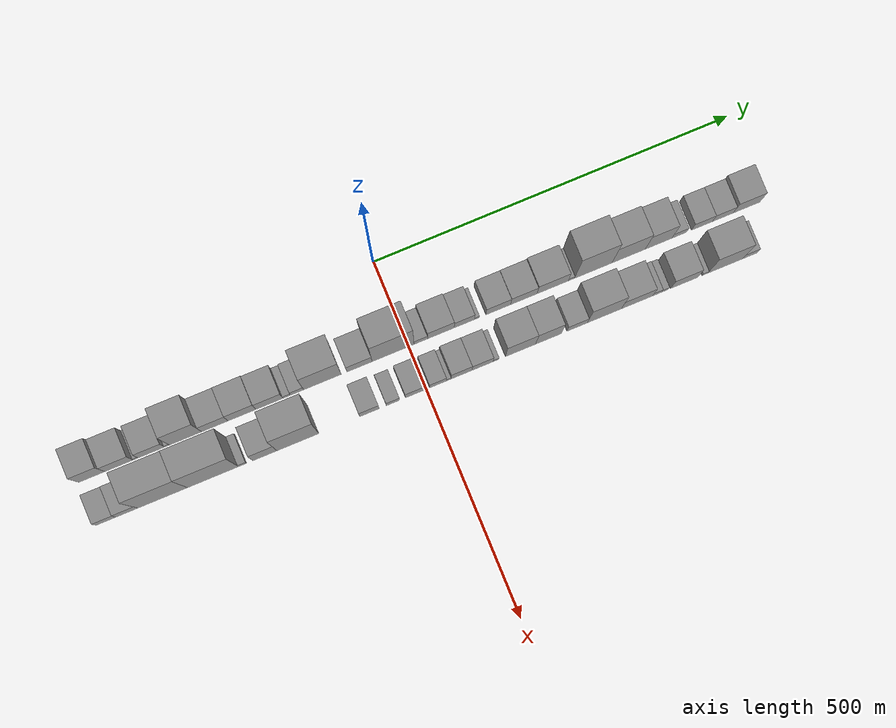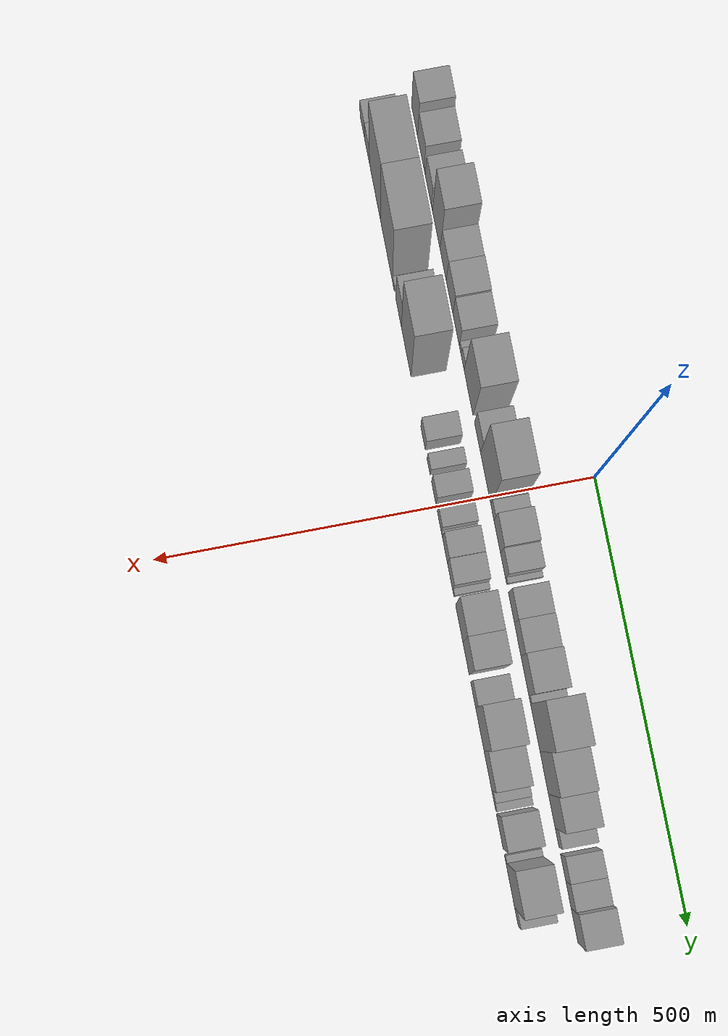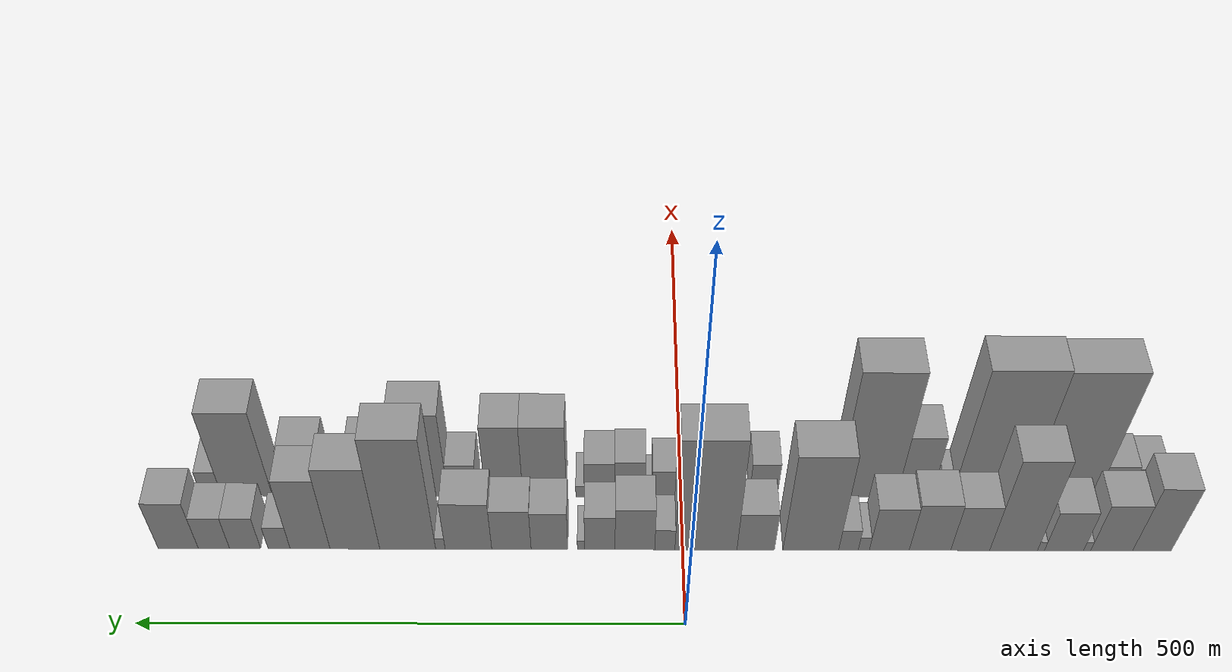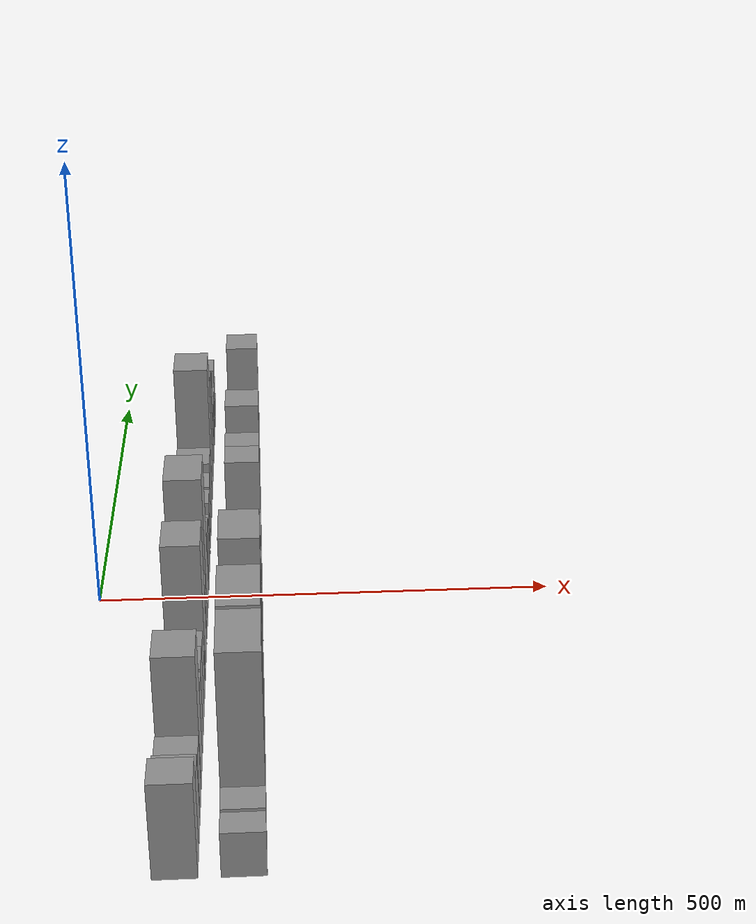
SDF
<sdf version="1.6">
 <world name="default">
  <scene>
   <sky><clouds><speed>12</speed></clouds></sky>
   <ambient>0.4 0.4 0.4 1</ambient>
   <background>0.7 0.7 0.7 1</background>
   <shadows>1</shadows>
  </scene>
  <gravity>0 0 -9.8066</gravity>
  <magnetic_field>6e-06 2.3e-05 -4.2e-05</magnetic_field>
  <physics default="0" name="default_physics" type="ode">
   <ode>
    <solver>
     <type>quick</type>
     <iters>10</iters>
     <sor>1.0</sor>
     <use_dynamic_moi_rescaling>0</use_dynamic_moi_rescaling>
    </solver>
    <constraints>
     <cfm>0</cfm>
     <erp>0.2</erp>
     <contact_max_correcting_vel>100</contact_max_correcting_vel>
     <contact_surface_layer>0.001</contact_surface_layer>
    </constraints>
   </ode>
   <max_step_size>0.004</max_step_size>
   <real_time_factor>1</real_time_factor>
   <real_time_update_rate>250</real_time_update_rate>
  </physics>
  <light name="sun" type="directional">
   <pose>0 0 10 0 0 0</pose>
   <diffuse>0.8 0.8 0.8 1</diffuse>
   <specular>0.2 0.2 0.2 1</specular>
   <attenuation>
    <range>1000</range>
    <constant>0.9</constant>
    <linear>0.01</linear>
    <quadratic>0.001</quadratic>
   </attenuation>
   <direction>-0.5 0.1 -0.9</direction>
  </light>
  <model name="building_1">
   <static>1</static>
   <pose>100.0000 -441.8126 0 0.000000 0.000000 0.000000</pose>
   <link name="link">
    <pose>0 0 51.00 0 0 0</pose>
    <collision name="collision"><geometry><box><size>40.0000 36.3749 102.0000</size></box></geometry></collision>
    <visual name="visual">
     <cast_shadows>0</cast_shadows>
     <geometry><box><size>40.0000 36.3749 102.0000</size></box></geometry>
     <material>
      <script>
       <uri>model://grey_wall/materials/scripts</uri>
       <uri>model://grey_wall/materials/textures</uri>
       <name>vrc/grey_wall</name>
      </script>
     </material>
    </visual>
   </link>
  </model>
  <model name="building_2">
   <static>1</static>
   <pose>100.0000 -403.9392 0 0.000000 0.000000 0.000000</pose>
   <link name="link">
    <pose>0 0 37.50 0 0 0</pose>
    <collision name="collision"><geometry><box><size>40.0000 39.3718 75.0000</size></box></geometry></collision>
    <visual name="visual">
     <cast_shadows>0</cast_shadows>
     <geometry><box><size>40.0000 39.3718 75.0000</size></box></geometry>
     <material>
      <script>
       <uri>model://grey_wall/materials/scripts</uri>
       <uri>model://grey_wall/materials/textures</uri>
       <name>vrc/grey_wall</name>
      </script>
     </material>
    </visual>
   </link>
  </model>
  <model name="building_3">
   <static>1</static>
   <pose>100.0000 -380.8767 0 0.000000 0.000000 0.000000</pose>
   <link name="link">
    <pose>0 0 7.50 0 0 0</pose>
    <collision name="collision"><geometry><box><size>40.0000 6.7534 15.0000</size></box></geometry></collision>
    <visual name="visual">
     <cast_shadows>0</cast_shadows>
     <geometry><box><size>40.0000 6.7534 15.0000</size></box></geometry>
     <material>
      <script>
       <uri>model://grey_wall/materials/scripts</uri>
       <uri>model://grey_wall/materials/textures</uri>
       <name>vrc/grey_wall</name>
      </script>
     </material>
    </visual>
   </link>
  </model>
  <model name="building_4">
   <static>1</static>
   <pose>100.0000 -359.0829 0 0.000000 0.000000 0.000000</pose>
   <link name="link">
    <pose>0 0 31.50 0 0 0</pose>
    <collision name="collision"><geometry><box><size>40.0000 36.8342 63.0000</size></box></geometry></collision>
    <visual name="visual">
     <cast_shadows>0</cast_shadows>
     <geometry><box><size>40.0000 36.8342 63.0000</size></box></geometry>
     <material>
      <script>
       <uri>model://grey_wall/materials/scripts</uri>
       <uri>model://grey_wall/materials/textures</uri>
       <name>vrc/grey_wall</name>
      </script>
     </material>
    </visual>
   </link>
  </model>
  <model name="building_5">
   <static>1</static>
   <pose>100.0000 -337.3426 0 0.000000 0.000000 0.000000</pose>
   <link name="link">
    <pose>0 0 7.50 0 0 0</pose>
    <collision name="collision"><geometry><box><size>40.0000 6.6463 15.0000</size></box></geometry></collision>
    <visual name="visual">
     <cast_shadows>0</cast_shadows>
     <geometry><box><size>40.0000 6.6463 15.0000</size></box></geometry>
     <material>
      <script>
       <uri>model://grey_wall/materials/scripts</uri>
       <uri>model://grey_wall/materials/textures</uri>
       <name>vrc/grey_wall</name>
      </script>
     </material>
    </visual>
   </link>
  </model>
  <model name="building_6">
   <static>1</static>
   <pose>100.0000 -311.4892 0 0.000000 0.000000 0.000000</pose>
   <link name="link">
    <pose>0 0 72.00 0 0 0</pose>
    <collision name="collision"><geometry><box><size>40.0000 45.0605 144.0000</size></box></geometry></collision>
    <visual name="visual">
     <cast_shadows>0</cast_shadows>
     <geometry><box><size>40.0000 45.0605 144.0000</size></box></geometry>
     <material>
      <script>
       <uri>model://grey_wall/materials/scripts</uri>
       <uri>model://grey_wall/materials/textures</uri>
       <name>vrc/grey_wall</name>
      </script>
     </material>
    </visual>
   </link>
  </model>
  <model name="building_7">
   <static>1</static>
   <pose>100.0000 -270.5610 0 0.000000 0.000000 0.000000</pose>
   <link name="link">
    <pose>0 0 36.00 0 0 0</pose>
    <collision name="collision"><geometry><box><size>40.0000 36.7960 72.0000</size></box></geometry></collision>
    <visual name="visual">
     <cast_shadows>0</cast_shadows>
     <geometry><box><size>40.0000 36.7960 72.0000</size></box></geometry>
     <material>
      <script>
       <uri>model://grey_wall/materials/scripts</uri>
       <uri>model://grey_wall/materials/textures</uri>
       <name>vrc/grey_wall</name>
      </script>
     </material>
    </visual>
   </link>
  </model>
  <model name="building_8">
   <static>1</static>
   <pose>100.0000 -232.6047 0 0.000000 0.000000 0.000000</pose>
   <link name="link">
    <pose>0 0 37.50 0 0 0</pose>
    <collision name="collision"><geometry><box><size>40.0000 39.1166 75.0000</size></box></geometry></collision>
    <visual name="visual">
     <cast_shadows>0</cast_shadows>
     <geometry><box><size>40.0000 39.1166 75.0000</size></box></geometry>
     <material>
      <script>
       <uri>model://grey_wall/materials/scripts</uri>
       <uri>model://grey_wall/materials/textures</uri>
       <name>vrc/grey_wall</name>
      </script>
     </material>
    </visual>
   </link>
  </model>
  <model name="building_9">
   <static>1</static>
   <pose>100.0000 -194.2827 0 0.000000 0.000000 0.000000</pose>
   <link name="link">
    <pose>0 0 34.50 0 0 0</pose>
    <collision name="collision"><geometry><box><size>40.0000 37.5274 69.0000</size></box></geometry></collision>
    <visual name="visual">
     <cast_shadows>0</cast_shadows>
     <geometry><box><size>40.0000 37.5274 69.0000</size></box></geometry>
     <material>
      <script>
       <uri>model://grey_wall/materials/scripts</uri>
       <uri>model://grey_wall/materials/textures</uri>
       <name>vrc/grey_wall</name>
      </script>
     </material>
    </visual>
   </link>
  </model>
  <model name="building_10">
   <static>1</static>
   <pose>100.0000 -170.3097 0 0.000000 0.000000 0.000000</pose>
   <link name="link">
    <pose>0 0 10.50 0 0 0</pose>
    <collision name="collision"><geometry><box><size>40.0000 10.4186 21.0000</size></box></geometry></collision>
    <visual name="visual">
     <cast_shadows>0</cast_shadows>
     <geometry><box><size>40.0000 10.4186 21.0000</size></box></geometry>
     <material>
      <script>
       <uri>model://grey_wall/materials/scripts</uri>
       <uri>model://grey_wall/materials/textures</uri>
       <name>vrc/grey_wall</name>
      </script>
     </material>
    </visual>
   </link>
  </model>
  <model name="building_11">
   <static>1</static>
   <pose>100.0000 -155.8500 0 0.000000 0.000000 0.000000</pose>
   <link name="link">
    <pose>0 0 16.50 0 0 0</pose>
    <collision name="collision"><geometry><box><size>40.0000 18.5008 33.0000</size></box></geometry></collision>
    <visual name="visual">
     <cast_shadows>0</cast_shadows>
     <geometry><box><size>40.0000 18.5008 33.0000</size></box></geometry>
     <material>
      <script>
       <uri>model://grey_wall/materials/scripts</uri>
       <uri>model://grey_wall/materials/textures</uri>
       <name>vrc/grey_wall</name>
      </script>
     </material>
    </visual>
   </link>
  </model>
  <model name="building_12">
   <static>1</static>
   <pose>100.0000 -120.3261 0 0.000000 0.000000 0.000000</pose>
   <link name="link">
    <pose>0 0 75.00 0 0 0</pose>
    <collision name="collision"><geometry><box><size>40.0000 52.5469 150.0000</size></box></geometry></collision>
    <visual name="visual">
     <cast_shadows>0</cast_shadows>
     <geometry><box><size>40.0000 52.5469 150.0000</size></box></geometry>
     <material>
      <script>
       <uri>model://grey_wall/materials/scripts</uri>
       <uri>model://grey_wall/materials/textures</uri>
       <name>vrc/grey_wall</name>
      </script>
     </material>
    </visual>
   </link>
  </model>
  <model name="building_13">
   <static>1</static>
   <pose>100.0000 -68.3643 0 0.000000 0.000000 0.000000</pose>
   <link name="link">
    <pose>0 0 30.00 0 0 0</pose>
    <collision name="collision"><geometry><box><size>40.0000 35.3768 60.0000</size></box></geometry></collision>
    <visual name="visual">
     <cast_shadows>0</cast_shadows>
     <geometry><box><size>40.0000 35.3768 60.0000</size></box></geometry>
     <material>
      <script>
       <uri>model://grey_wall/materials/scripts</uri>
       <uri>model://grey_wall/materials/textures</uri>
       <name>vrc/grey_wall</name>
      </script>
     </material>
    </visual>
   </link>
  </model>
  <model name="building_14">
   <static>1</static>
   <pose>100.0000 -21.4042 0 0.000000 0.000000 0.000000</pose>
   <link name="link">
    <pose>0 0 87.00 0 0 0</pose>
    <collision name="collision"><geometry><box><size>40.0000 58.5434 174.0000</size></box></geometry></collision>
    <visual name="visual">
     <cast_shadows>0</cast_shadows>
     <geometry><box><size>40.0000 58.5434 174.0000</size></box></geometry>
     <material>
      <script>
       <uri>model://grey_wall/materials/scripts</uri>
       <uri>model://grey_wall/materials/textures</uri>
       <name>vrc/grey_wall</name>
      </script>
     </material>
    </visual>
   </link>
  </model>
  <model name="building_15">
   <static>1</static>
   <pose>100.0000 17.3543 0 0.000000 0.000000 0.000000</pose>
   <link name="link">
    <pose>0 0 16.50 0 0 0</pose>
    <collision name="collision"><geometry><box><size>40.0000 18.9735 33.0000</size></box></geometry></collision>
    <visual name="visual">
     <cast_shadows>0</cast_shadows>
     <geometry><box><size>40.0000 18.9735 33.0000</size></box></geometry>
     <material>
      <script>
       <uri>model://grey_wall/materials/scripts</uri>
       <uri>model://grey_wall/materials/textures</uri>
       <name>vrc/grey_wall</name>
      </script>
     </material>
    </visual>
   </link>
  </model>
  <model name="building_16">
   <static>1</static>
   <pose>100.0000 45.5237 0 0.000000 0.000000 0.000000</pose>
   <link name="link">
    <pose>0 0 33.00 0 0 0</pose>
    <collision name="collision"><geometry><box><size>40.0000 37.3653 66.0000</size></box></geometry></collision>
    <visual name="visual">
     <cast_shadows>0</cast_shadows>
     <geometry><box><size>40.0000 37.3653 66.0000</size></box></geometry>
     <material>
      <script>
       <uri>model://grey_wall/materials/scripts</uri>
       <uri>model://grey_wall/materials/textures</uri>
       <name>vrc/grey_wall</name>
      </script>
     </material>
    </visual>
   </link>
  </model>
  <model name="building_17">
   <static>1</static>
   <pose>100.0000 78.5147 0 0.000000 0.000000 0.000000</pose>
   <link name="link">
    <pose>0 0 27.00 0 0 0</pose>
    <collision name="collision"><geometry><box><size>40.0000 28.6168 54.0000</size></box></geometry></collision>
    <visual name="visual">
     <cast_shadows>0</cast_shadows>
     <geometry><box><size>40.0000 28.6168 54.0000</size></box></geometry>
     <material>
      <script>
       <uri>model://grey_wall/materials/scripts</uri>
       <uri>model://grey_wall/materials/textures</uri>
       <name>vrc/grey_wall</name>
      </script>
     </material>
    </visual>
   </link>
  </model>
  <model name="building_18">
   <static>1</static>
   <pose>100.0000 96.2851 0 0.000000 0.000000 0.000000</pose>
   <link name="link">
    <pose>0 0 7.50 0 0 0</pose>
    <collision name="collision"><geometry><box><size>40.0000 6.9240 15.0000</size></box></geometry></collision>
    <visual name="visual">
     <cast_shadows>0</cast_shadows>
     <geometry><box><size>40.0000 6.9240 15.0000</size></box></geometry>
     <material>
      <script>
       <uri>model://grey_wall/materials/scripts</uri>
       <uri>model://grey_wall/materials/textures</uri>
       <name>vrc/grey_wall</name>
      </script>
     </material>
    </visual>
   </link>
  </model>
  <model name="building_19">
   <static>1</static>
   <pose>100.0000 126.0589 0 0.000000 0.000000 0.000000</pose>
   <link name="link">
    <pose>0 0 30.00 0 0 0</pose>
    <collision name="collision"><geometry><box><size>40.0000 34.6235 60.0000</size></box></geometry></collision>
    <visual name="visual">
     <cast_shadows>0</cast_shadows>
     <geometry><box><size>40.0000 34.6235 60.0000</size></box></geometry>
     <material>
      <script>
       <uri>model://grey_wall/materials/scripts</uri>
       <uri>model://grey_wall/materials/textures</uri>
       <name>vrc/grey_wall</name>
      </script>
     </material>
    </visual>
   </link>
  </model>
  <model name="building_20">
   <static>1</static>
   <pose>100.0000 161.9374 0 0.000000 0.000000 0.000000</pose>
   <link name="link">
    <pose>0 0 31.50 0 0 0</pose>
    <collision name="collision"><geometry><box><size>40.0000 37.1336 63.0000</size></box></geometry></collision>
    <visual name="visual">
     <cast_shadows>0</cast_shadows>
     <geometry><box><size>40.0000 37.1336 63.0000</size></box></geometry>
     <material>
      <script>
       <uri>model://grey_wall/materials/scripts</uri>
       <uri>model://grey_wall/materials/textures</uri>
       <name>vrc/grey_wall</name>
      </script>
     </material>
    </visual>
   </link>
  </model>
  <model name="building_21">
   <static>1</static>
   <pose>100.0000 202.5004 0 0.000000 0.000000 0.000000</pose>
   <link name="link">
    <pose>0 0 37.50 0 0 0</pose>
    <collision name="collision"><geometry><box><size>40.0000 43.9925 75.0000</size></box></geometry></collision>
    <visual name="visual">
     <cast_shadows>0</cast_shadows>
     <geometry><box><size>40.0000 43.9925 75.0000</size></box></geometry>
     <material>
      <script>
       <uri>model://grey_wall/materials/scripts</uri>
       <uri>model://grey_wall/materials/textures</uri>
       <name>vrc/grey_wall</name>
      </script>
     </material>
    </visual>
   </link>
  </model>
  <model name="building_22">
   <static>1</static>
   <pose>100.0000 228.9801 0 0.000000 0.000000 0.000000</pose>
   <link name="link">
    <pose>0 0 9.00 0 0 0</pose>
    <collision name="collision"><geometry><box><size>40.0000 8.9669 18.0000</size></box></geometry></collision>
    <visual name="visual">
     <cast_shadows>0</cast_shadows>
     <geometry><box><size>40.0000 8.9669 18.0000</size></box></geometry>
     <material>
      <script>
       <uri>model://grey_wall/materials/scripts</uri>
       <uri>model://grey_wall/materials/textures</uri>
       <name>vrc/grey_wall</name>
      </script>
     </material>
    </visual>
   </link>
  </model>
  <model name="building_23">
   <static>1</static>
   <pose>100.0000 259.8281 0 0.000000 0.000000 0.000000</pose>
   <link name="link">
    <pose>0 0 87.00 0 0 0</pose>
    <collision name="collision"><geometry><box><size>40.0000 52.7291 174.0000</size></box></geometry></collision>
    <visual name="visual">
     <cast_shadows>0</cast_shadows>
     <geometry><box><size>40.0000 52.7291 174.0000</size></box></geometry>
     <material>
      <script>
       <uri>model://grey_wall/materials/scripts</uri>
       <uri>model://grey_wall/materials/textures</uri>
       <name>vrc/grey_wall</name>
      </script>
     </material>
    </visual>
   </link>
  </model>
  <model name="building_24">
   <static>1</static>
   <pose>100.0000 309.6438 0 0.000000 0.000000 0.000000</pose>
   <link name="link">
    <pose>0 0 64.50 0 0 0</pose>
    <collision name="collision"><geometry><box><size>40.0000 46.9024 129.0000</size></box></geometry></collision>
    <visual name="visual">
     <cast_shadows>0</cast_shadows>
     <geometry><box><size>40.0000 46.9024 129.0000</size></box></geometry>
     <material>
      <script>
       <uri>model://grey_wall/materials/scripts</uri>
       <uri>model://grey_wall/materials/textures</uri>
       <name>vrc/grey_wall</name>
      </script>
     </material>
    </visual>
   </link>
  </model>
  <model name="building_25">
   <static>1</static>
   <pose>100.0000 351.9234 0 0.000000 0.000000 0.000000</pose>
   <link name="link">
    <pose>0 0 55.50 0 0 0</pose>
    <collision name="collision"><geometry><box><size>40.0000 37.6569 111.0000</size></box></geometry></collision>
    <visual name="visual">
     <cast_shadows>0</cast_shadows>
     <geometry><box><size>40.0000 37.6569 111.0000</size></box></geometry>
     <material>
      <script>
       <uri>model://grey_wall/materials/scripts</uri>
       <uri>model://grey_wall/materials/textures</uri>
       <name>vrc/grey_wall</name>
      </script>
     </material>
    </visual>
   </link>
  </model>
  <model name="building_26">
   <static>1</static>
   <pose>100.0000 381.1770 0 0.000000 0.000000 0.000000</pose>
   <link name="link">
    <pose>0 0 18.00 0 0 0</pose>
    <collision name="collision"><geometry><box><size>40.0000 20.8504 36.0000</size></box></geometry></collision>
    <visual name="visual">
     <cast_shadows>0</cast_shadows>
     <geometry><box><size>40.0000 20.8504 36.0000</size></box></geometry>
     <material>
      <script>
       <uri>model://grey_wall/materials/scripts</uri>
       <uri>model://grey_wall/materials/textures</uri>
       <name>vrc/grey_wall</name>
      </script>
     </material>
    </visual>
   </link>
  </model>
  <model name="building_27">
   <static>1</static>
   <pose>100.0000 413.2672 0 0.000000 0.000000 0.000000</pose>
   <link name="link">
    <pose>0 0 25.50 0 0 0</pose>
    <collision name="collision"><geometry><box><size>40.0000 29.3300 51.0000</size></box></geometry></collision>
    <visual name="visual">
     <cast_shadows>0</cast_shadows>
     <geometry><box><size>40.0000 29.3300 51.0000</size></box></geometry>
     <material>
      <script>
       <uri>model://grey_wall/materials/scripts</uri>
       <uri>model://grey_wall/materials/textures</uri>
       <name>vrc/grey_wall</name>
      </script>
     </material>
    </visual>
   </link>
  </model>
  <model name="building_28">
   <static>1</static>
   <pose>100.0000 442.6808 0 0.000000 0.000000 0.000000</pose>
   <link name="link">
    <pose>0 0 25.50 0 0 0</pose>
    <collision name="collision"><geometry><box><size>40.0000 29.4973 51.0000</size></box></geometry></collision>
    <visual name="visual">
     <cast_shadows>0</cast_shadows>
     <geometry><box><size>40.0000 29.4973 51.0000</size></box></geometry>
     <material>
      <script>
       <uri>model://grey_wall/materials/scripts</uri>
       <uri>model://grey_wall/materials/textures</uri>
       <name>vrc/grey_wall</name>
      </script>
     </material>
    </visual>
   </link>
  </model>
  <model name="building_29">
   <static>1</static>
   <pose>100.0000 476.3734 0 0.000000 0.000000 0.000000</pose>
   <link name="link">
    <pose>0 0 37.50 0 0 0</pose>
    <collision name="collision"><geometry><box><size>40.0000 37.8878 75.0000</size></box></geometry></collision>
    <visual name="visual">
     <cast_shadows>0</cast_shadows>
     <geometry><box><size>40.0000 37.8878 75.0000</size></box></geometry>
     <material>
      <script>
       <uri>model://grey_wall/materials/scripts</uri>
       <uri>model://grey_wall/materials/textures</uri>
       <name>vrc/grey_wall</name>
      </script>
     </material>
    </visual>
   </link>
  </model>
  <model name="building_30">
   <static>1</static>
   <pose>160.0000 -446.0998 0 0.000000 0.000000 0.000000</pose>
   <link name="link">
    <pose>0 0 24.00 0 0 0</pose>
    <collision name="collision"><geometry><box><size>40.0000 27.8004 48.0000</size></box></geometry></collision>
    <visual name="visual">
     <cast_shadows>0</cast_shadows>
     <geometry><box><size>40.0000 27.8004 48.0000</size></box></geometry>
     <material>
      <script>
       <uri>model://grey_wall/materials/scripts</uri>
       <uri>model://grey_wall/materials/textures</uri>
       <name>vrc/grey_wall</name>
      </script>
     </material>
    </visual>
   </link>
  </model>
  <model name="building_31">
   <static>1</static>
   <pose>160.0000 -416.9779 0 0.000000 0.000000 0.000000</pose>
   <link name="link">
    <pose>0 0 25.50 0 0 0</pose>
    <collision name="collision"><geometry><box><size>40.0000 30.4434 51.0000</size></box></geometry></collision>
    <visual name="visual">
     <cast_shadows>0</cast_shadows>
     <geometry><box><size>40.0000 30.4434 51.0000</size></box></geometry>
     <material>
      <script>
       <uri>model://grey_wall/materials/scripts</uri>
       <uri>model://grey_wall/materials/textures</uri>
       <name>vrc/grey_wall</name>
      </script>
     </material>
    </visual>
   </link>
  </model>
  <model name="building_32">
   <static>1</static>
   <pose>160.0000 -367.3144 0 0.000000 0.000000 0.000000</pose>
   <link name="link">
    <pose>0 0 96.00 0 0 0</pose>
    <collision name="collision"><geometry><box><size>40.0000 68.8836 192.0000</size></box></geometry></collision>
    <visual name="visual">
     <cast_shadows>0</cast_shadows>
     <geometry><box><size>40.0000 68.8836 192.0000</size></box></geometry>
     <material>
      <script>
       <uri>model://grey_wall/materials/scripts</uri>
       <uri>model://grey_wall/materials/textures</uri>
       <name>vrc/grey_wall</name>
      </script>
     </material>
    </visual>
   </link>
  </model>
  <model name="building_33">
   <static>1</static>
   <pose>160.0000 -297.3180 0 0.000000 0.000000 0.000000</pose>
   <link name="link">
    <pose>0 0 97.50 0 0 0</pose>
    <collision name="collision"><geometry><box><size>40.0000 71.1093 195.0000</size></box></geometry></collision>
    <visual name="visual">
     <cast_shadows>0</cast_shadows>
     <geometry><box><size>40.0000 71.1093 195.0000</size></box></geometry>
     <material>
      <script>
       <uri>model://grey_wall/materials/scripts</uri>
       <uri>model://grey_wall/materials/textures</uri>
       <name>vrc/grey_wall</name>
      </script>
     </material>
    </visual>
   </link>
  </model>
  <model name="building_34">
   <static>1</static>
   <pose>160.0000 -256.2632 0 0.000000 0.000000 0.000000</pose>
   <link name="link">
    <pose>0 0 12.00 0 0 0</pose>
    <collision name="collision"><geometry><box><size>40.0000 11.0002 24.0000</size></box></geometry></collision>
    <visual name="visual">
     <cast_shadows>0</cast_shadows>
     <geometry><box><size>40.0000 11.0002 24.0000</size></box></geometry>
     <material>
      <script>
       <uri>model://grey_wall/materials/scripts</uri>
       <uri>model://grey_wall/materials/textures</uri>
       <name>vrc/grey_wall</name>
      </script>
     </material>
    </visual>
   </link>
  </model>
  <model name="building_35">
   <static>1</static>
   <pose>160.0000 -225.0350 0 0.000000 0.000000 0.000000</pose>
   <link name="link">
    <pose>0 0 48.00 0 0 0</pose>
    <collision name="collision"><geometry><box><size>40.0000 33.4562 96.0000</size></box></geometry></collision>
    <visual name="visual">
     <cast_shadows>0</cast_shadows>
     <geometry><box><size>40.0000 33.4562 96.0000</size></box></geometry>
     <material>
      <script>
       <uri>model://grey_wall/materials/scripts</uri>
       <uri>model://grey_wall/materials/textures</uri>
       <name>vrc/grey_wall</name>
      </script>
     </material>
    </visual>
   </link>
  </model>
  <model name="building_36">
   <static>1</static>
   <pose>160.0000 -179.1748 0 0.000000 0.000000 0.000000</pose>
   <link name="link">
    <pose>0 0 96.00 0 0 0</pose>
    <collision name="collision"><geometry><box><size>40.0000 58.2642 192.0000</size></box></geometry></collision>
    <visual name="visual">
     <cast_shadows>0</cast_shadows>
     <geometry><box><size>40.0000 58.2642 192.0000</size></box></geometry>
     <material>
      <script>
       <uri>model://grey_wall/materials/scripts</uri>
       <uri>model://grey_wall/materials/textures</uri>
       <name>vrc/grey_wall</name>
      </script>
     </material>
    </visual>
   </link>
  </model>
  <model name="building_37">
   <static>1</static>
   <pose>160.0000 -79.1881 0 0.000000 0.000000 0.000000</pose>
   <link name="link">
    <pose>0 0 27.00 0 0 0</pose>
    <collision name="collision"><geometry><box><size>40.0000 27.2364 54.0000</size></box></geometry></collision>
    <visual name="visual">
     <cast_shadows>0</cast_shadows>
     <geometry><box><size>40.0000 27.2364 54.0000</size></box></geometry>
     <material>
      <script>
       <uri>model://grey_wall/materials/scripts</uri>
       <uri>model://grey_wall/materials/textures</uri>
       <name>vrc/grey_wall</name>
      </script>
     </material>
    </visual>
   </link>
  </model>
  <model name="building_38">
   <static>1</static>
   <pose>160.0000 -46.2219 0 0.000000 0.000000 0.000000</pose>
   <link name="link">
    <pose>0 0 18.00 0 0 0</pose>
    <collision name="collision"><geometry><box><size>40.0000 18.6960 36.0000</size></box></geometry></collision>
    <visual name="visual">
     <cast_shadows>0</cast_shadows>
     <geometry><box><size>40.0000 18.6960 36.0000</size></box></geometry>
     <material>
      <script>
       <uri>model://grey_wall/materials/scripts</uri>
       <uri>model://grey_wall/materials/textures</uri>
       <name>vrc/grey_wall</name>
      </script>
     </material>
    </visual>
   </link>
  </model>
  <model name="building_39">
   <static>1</static>
   <pose>160.0000 -15.9648 0 0.000000 0.000000 0.000000</pose>
   <link name="link">
    <pose>0 0 25.50 0 0 0</pose>
    <collision name="collision"><geometry><box><size>40.0000 25.8182 51.0000</size></box></geometry></collision>
    <visual name="visual">
     <cast_shadows>0</cast_shadows>
     <geometry><box><size>40.0000 25.8182 51.0000</size></box></geometry>
     <material>
      <script>
       <uri>model://grey_wall/materials/scripts</uri>
       <uri>model://grey_wall/materials/textures</uri>
       <name>vrc/grey_wall</name>
      </script>
     </material>
    </visual>
   </link>
  </model>
  <model name="building_40">
   <static>1</static>
   <pose>160.0000 16.7329 0 0.000000 0.000000 0.000000</pose>
   <link name="link">
    <pose>0 0 21.00 0 0 0</pose>
    <collision name="collision"><geometry><box><size>40.0000 23.5772 42.0000</size></box></geometry></collision>
    <visual name="visual">
     <cast_shadows>0</cast_shadows>
     <geometry><box><size>40.0000 23.5772 42.0000</size></box></geometry>
     <material>
      <script>
       <uri>model://grey_wall/materials/scripts</uri>
       <uri>model://grey_wall/materials/textures</uri>
       <name>vrc/grey_wall</name>
      </script>
     </material>
    </visual>
   </link>
  </model>
  <model name="building_41">
   <static>1</static>
   <pose>160.0000 31.8814 0 0.000000 0.000000 0.000000</pose>
   <link name="link">
    <pose>0 0 7.50 0 0 0</pose>
    <collision name="collision"><geometry><box><size>40.0000 6.7196 15.0000</size></box></geometry></collision>
    <visual name="visual">
     <cast_shadows>0</cast_shadows>
     <geometry><box><size>40.0000 6.7196 15.0000</size></box></geometry>
     <material>
      <script>
       <uri>model://grey_wall/materials/scripts</uri>
       <uri>model://grey_wall/materials/textures</uri>
       <name>vrc/grey_wall</name>
      </script>
     </material>
    </visual>
   </link>
  </model>
  <model name="building_42">
   <static>1</static>
   <pose>160.0000 49.8127 0 0.000000 0.000000 0.000000</pose>
   <link name="link">
    <pose>0 0 28.50 0 0 0</pose>
    <collision name="collision"><geometry><box><size>40.0000 29.1430 57.0000</size></box></geometry></collision>
    <visual name="visual">
     <cast_shadows>0</cast_shadows>
     <geometry><box><size>40.0000 29.1430 57.0000</size></box></geometry>
     <material>
      <script>
       <uri>model://grey_wall/materials/scripts</uri>
       <uri>model://grey_wall/materials/textures</uri>
       <name>vrc/grey_wall</name>
      </script>
     </material>
    </visual>
   </link>
  </model>
  <model name="building_43">
   <static>1</static>
   <pose>160.0000 79.1758 0 0.000000 0.000000 0.000000</pose>
   <link name="link">
    <pose>0 0 27.00 0 0 0</pose>
    <collision name="collision"><geometry><box><size>40.0000 29.5832 54.0000</size></box></geometry></collision>
    <visual name="visual">
     <cast_shadows>0</cast_shadows>
     <geometry><box><size>40.0000 29.5832 54.0000</size></box></geometry>
     <material>
      <script>
       <uri>model://grey_wall/materials/scripts</uri>
       <uri>model://grey_wall/materials/textures</uri>
       <name>vrc/grey_wall</name>
      </script>
     </material>
    </visual>
   </link>
  </model>
  <model name="building_44">
   <static>1</static>
   <pose>160.0000 98.0812 0 0.000000 0.000000 0.000000</pose>
   <link name="link">
    <pose>0 0 9.00 0 0 0</pose>
    <collision name="collision"><geometry><box><size>40.0000 8.2276 18.0000</size></box></geometry></collision>
    <visual name="visual">
     <cast_shadows>0</cast_shadows>
     <geometry><box><size>40.0000 8.2276 18.0000</size></box></geometry>
     <material>
      <script>
       <uri>model://grey_wall/materials/scripts</uri>
       <uri>model://grey_wall/materials/textures</uri>
       <name>vrc/grey_wall</name>
      </script>
     </material>
    </visual>
   </link>
  </model>
  <model name="building_45">
   <static>1</static>
   <pose>160.0000 132.3392 0 0.000000 0.000000 0.000000</pose>
   <link name="link">
    <pose>0 0 55.50 0 0 0</pose>
    <collision name="collision"><geometry><box><size>40.0000 42.2884 111.0000</size></box></geometry></collision>
    <visual name="visual">
     <cast_shadows>0</cast_shadows>
     <geometry><box><size>40.0000 42.2884 111.0000</size></box></geometry>
     <material>
      <script>
       <uri>model://grey_wall/materials/scripts</uri>
       <uri>model://grey_wall/materials/textures</uri>
       <name>vrc/grey_wall</name>
      </script>
     </material>
    </visual>
   </link>
  </model>
  <model name="building_46">
   <static>1</static>
   <pose>160.0000 171.5870 0 0.000000 0.000000 0.000000</pose>
   <link name="link">
    <pose>0 0 55.50 0 0 0</pose>
    <collision name="collision"><geometry><box><size>40.0000 36.2071 111.0000</size></box></geometry></collision>
    <visual name="visual">
     <cast_shadows>0</cast_shadows>
     <geometry><box><size>40.0000 36.2071 111.0000</size></box></geometry>
     <material>
      <script>
       <uri>model://grey_wall/materials/scripts</uri>
       <uri>model://grey_wall/materials/textures</uri>
       <name>vrc/grey_wall</name>
      </script>
     </material>
    </visual>
   </link>
  </model>
  <model name="building_47">
   <static>1</static>
   <pose>160.0000 211.8561 0 0.000000 0.000000 0.000000</pose>
   <link name="link">
    <pose>0 0 25.50 0 0 0</pose>
    <collision name="collision"><geometry><box><size>40.0000 28.3312 51.0000</size></box></geometry></collision>
    <visual name="visual">
     <cast_shadows>0</cast_shadows>
     <geometry><box><size>40.0000 28.3312 51.0000</size></box></geometry>
     <material>
      <script>
       <uri>model://grey_wall/materials/scripts</uri>
       <uri>model://grey_wall/materials/textures</uri>
       <name>vrc/grey_wall</name>
      </script>
     </material>
    </visual>
   </link>
  </model>
  <model name="building_48">
   <static>1</static>
   <pose>160.0000 250.0031 0 0.000000 0.000000 0.000000</pose>
   <link name="link">
    <pose>0 0 64.50 0 0 0</pose>
    <collision name="collision"><geometry><box><size>40.0000 47.9628 129.0000</size></box></geometry></collision>
    <visual name="visual">
     <cast_shadows>0</cast_shadows>
     <geometry><box><size>40.0000 47.9628 129.0000</size></box></geometry>
     <material>
      <script>
       <uri>model://grey_wall/materials/scripts</uri>
       <uri>model://grey_wall/materials/textures</uri>
       <name>vrc/grey_wall</name>
      </script>
     </material>
    </visual>
   </link>
  </model>
  <model name="building_49">
   <static>1</static>
   <pose>160.0000 296.0678 0 0.000000 0.000000 0.000000</pose>
   <link name="link">
    <pose>0 0 37.50 0 0 0</pose>
    <collision name="collision"><geometry><box><size>40.0000 44.1665 75.0000</size></box></geometry></collision>
    <visual name="visual">
     <cast_shadows>0</cast_shadows>
     <geometry><box><size>40.0000 44.1665 75.0000</size></box></geometry>
     <material>
      <script>
       <uri>model://grey_wall/materials/scripts</uri>
       <uri>model://grey_wall/materials/textures</uri>
       <name>vrc/grey_wall</name>
      </script>
     </material>
    </visual>
   </link>
  </model>
  <model name="building_50">
   <static>1</static>
   <pose>160.0000 324.6607 0 0.000000 0.000000 0.000000</pose>
   <link name="link">
    <pose>0 0 13.50 0 0 0</pose>
    <collision name="collision"><geometry><box><size>40.0000 13.0194 27.0000</size></box></geometry></collision>
    <visual name="visual">
     <cast_shadows>0</cast_shadows>
     <geometry><box><size>40.0000 13.0194 27.0000</size></box></geometry>
     <material>
      <script>
       <uri>model://grey_wall/materials/scripts</uri>
       <uri>model://grey_wall/materials/textures</uri>
       <name>vrc/grey_wall</name>
      </script>
     </material>
    </visual>
   </link>
  </model>
  <model name="building_51">
   <static>1</static>
   <pose>160.0000 335.8543 0 0.000000 0.000000 0.000000</pose>
   <link name="link">
    <pose>0 0 10.50 0 0 0</pose>
    <collision name="collision"><geometry><box><size>40.0000 9.3678 21.0000</size></box></geometry></collision>
    <visual name="visual">
     <cast_shadows>0</cast_shadows>
     <geometry><box><size>40.0000 9.3678 21.0000</size></box></geometry>
     <material>
      <script>
       <uri>model://grey_wall/materials/scripts</uri>
       <uri>model://grey_wall/materials/textures</uri>
       <name>vrc/grey_wall</name>
      </script>
     </material>
    </visual>
   </link>
  </model>
  <model name="building_52">
   <static>1</static>
   <pose>160.0000 362.7336 0 0.000000 0.000000 0.000000</pose>
   <link name="link">
    <pose>0 0 37.50 0 0 0</pose>
    <collision name="collision"><geometry><box><size>40.0000 38.3908 75.0000</size></box></geometry></collision>
    <visual name="visual">
     <cast_shadows>0</cast_shadows>
     <geometry><box><size>40.0000 38.3908 75.0000</size></box></geometry>
     <material>
      <script>
       <uri>model://grey_wall/materials/scripts</uri>
       <uri>model://grey_wall/materials/textures</uri>
       <name>vrc/grey_wall</name>
      </script>
     </material>
    </visual>
   </link>
  </model>
  <model name="building_53">
   <static>1</static>
   <pose>160.0000 392.1597 0 0.000000 0.000000 0.000000</pose>
   <link name="link">
    <pose>0 0 9.00 0 0 0</pose>
    <collision name="collision"><geometry><box><size>40.0000 8.4614 18.0000</size></box></geometry></collision>
    <visual name="visual">
     <cast_shadows>0</cast_shadows>
     <geometry><box><size>40.0000 8.4614 18.0000</size></box></geometry>
     <material>
      <script>
       <uri>model://grey_wall/materials/scripts</uri>
       <uri>model://grey_wall/materials/textures</uri>
       <name>vrc/grey_wall</name>
      </script>
     </material>
    </visual>
   </link>
  </model>
  <model name="building_54">
   <static>1</static>
   <pose>160.0000 420.9812 0 0.000000 0.000000 0.000000</pose>
   <link name="link">
    <pose>0 0 66.00 0 0 0</pose>
    <collision name="collision"><geometry><box><size>40.0000 49.1816 132.0000</size></box></geometry></collision>
    <visual name="visual">
     <cast_shadows>0</cast_shadows>
     <geometry><box><size>40.0000 49.1816 132.0000</size></box></geometry>
     <material>
      <script>
       <uri>model://grey_wall/materials/scripts</uri>
       <uri>model://grey_wall/materials/textures</uri>
       <name>vrc/grey_wall</name>
      </script>
     </material>
    </visual>
   </link>
  </model>
  <model name="building_55">
   <static>1</static>
   <pose>160.0000 455.4969 0 0.000000 0.000000 0.000000</pose>
   <link name="link">
    <pose>0 0 19.50 0 0 0</pose>
    <collision name="collision"><geometry><box><size>40.0000 19.8496 39.0000</size></box></geometry></collision>
    <visual name="visual">
     <cast_shadows>0</cast_shadows>
     <geometry><box><size>40.0000 19.8496 39.0000</size></box></geometry>
     <material>
      <script>
       <uri>model://grey_wall/materials/scripts</uri>
       <uri>model://grey_wall/materials/textures</uri>
       <name>vrc/grey_wall</name>
      </script>
     </material>
    </visual>
   </link>
  </model>
 </world>
</sdf>
